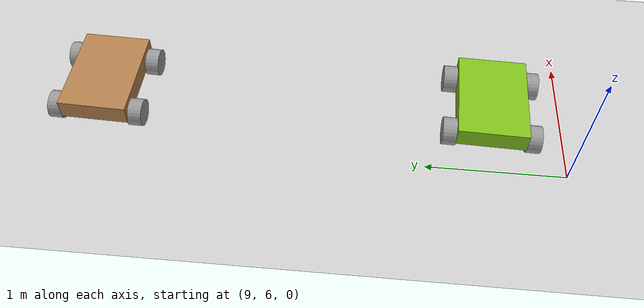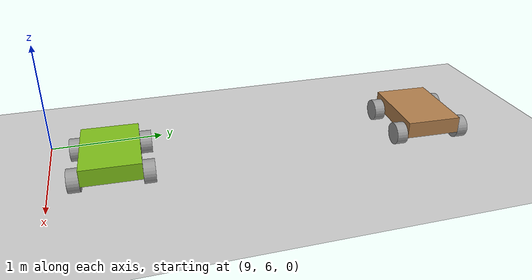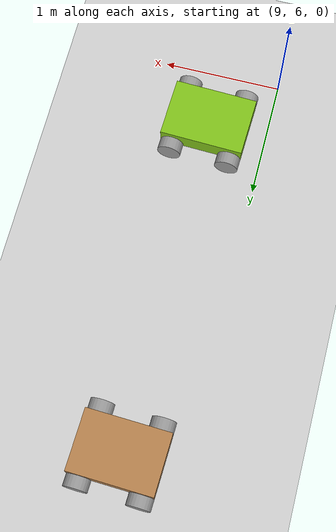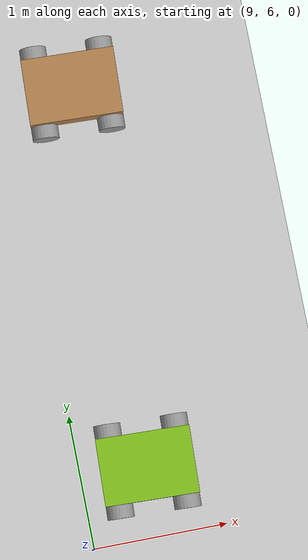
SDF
<sdf version="1.6">
 <world name="default">
  <model name="ground_plane">
   <static>1</static>
   <link name="link">
    <collision name="collision">
     <geometry><plane><normal>0 0 1</normal><size>100 100</size></plane></geometry>
     <surface>
      <contact><collide_bitmask>65535</collide_bitmask></contact>
      <friction><ode><mu>100</mu><mu2>50</mu2></ode></friction>
     </surface>
    </collision>
    <visual name="visual">
     <cast_shadows>0</cast_shadows>
     <geometry><plane><normal>0 0 1</normal><size>100 100</size></plane></geometry>
     <material>
      <script><uri>file://media/materials/scripts/gazebo.material</uri><name>Gazebo/Grey</name></script>
     </material>
    </visual>
   </link>
  </model>
  <model name="Marco-I">
   <link name="Chassis">
    <pose>-0 -0 0.0128 0 -0 0</pose>
    <inertial>
     <mass>1</mass>
     <inertia>
      <ixx>0.166667</ixx>
      <ixy>0</ixy>
      <ixz>0</ixz>
      <iyy>0.166667</iyy>
      <iyz>0</iyz>
      <izz>0.166667</izz>
     </inertia>
     <pose>0 0 0.2 0 -0 0</pose>
    </inertial>
    <visual name="Chassis_visual">
     <pose>0 0 0.2 0 -0 0</pose>
     <geometry><box><size>0.7 0.5 0.15</size></box></geometry>
     <material>
      <lighting>1</lighting>
      <script><uri>file://media/materials/scripts/gazebo.material</uri><name>Gazebo/Grey</name></script>
      <shader type="pixel"><normal_map>__default__</normal_map></shader>
      <ambient>0.5 0.75 0.1 1</ambient>
      <diffuse>0.7 0.7 0.7 1</diffuse>
      <specular>0.01 0.01 0.01 1</specular>
      <emissive>0 0 0 1</emissive>
     </material>
    </visual>
    <collision name="Chassis_collision">
     <pose>0 0 0.2 0 -0 0</pose>
     <geometry><box><size>0.7 0.5 0.15</size></box></geometry>
     <surface>
      <friction>
       <ode><mu>1</mu><mu2>1</mu2><fdir1>0 0 0</fdir1><slip1>0</slip1><slip2>0</slip2></ode>
       <torsional>
        <coefficient>1</coefficient>
        <patch_radius>0</patch_radius>
        <surface_radius>0</surface_radius>
        <use_patch_radius>1</use_patch_radius>
        <ode><slip>0</slip></ode>
       </torsional>
      </friction>
      <bounce><restitution_coefficient>0</restitution_coefficient><threshold>1e+06</threshold></bounce>
      <contact>
       <collide_without_contact>0</collide_without_contact>
       <collide_without_contact_bitmask>1</collide_without_contact_bitmask>
       <collide_bitmask>1</collide_bitmask>
       <ode>
        <soft_cfm>0</soft_cfm>
        <soft_erp>0.2</soft_erp>
        <kp>1e+13</kp>
        <kd>1</kd>
        <max_vel>0.01</max_vel>
        <min_depth>0</min_depth>
       </ode>
       <bullet>
        <split_impulse>1</split_impulse>
        <split_impulse_penetration_threshold>-0.01</split_impulse_penetration_threshold>
        <soft_cfm>0</soft_cfm>
        <soft_erp>0.2</soft_erp>
        <kp>1e+13</kp>
        <kd>1</kd>
       </bullet>
      </contact>
     </surface>
    </collision>
   </link>
   <link name="wheel_1">
    <pose>-0.25 0.30001 -0.0032 0 -0 0</pose>
    <inertial>
     <mass>1</mass>
     <inertia><ixx>0.145833</ixx><ixy>0</ixy><ixz>0</ixz><iyy>0.145833</iyy><iyz>0</iyz><izz>0.125</izz></inertia>
    </inertial>
    <visual name="wheel_1_visual">
     <pose>0 0 0.15 1.5707 -0 0</pose>
     <geometry><cylinder><radius>0.1</radius><length>0.1</length></cylinder></geometry>
     <material>
      <lighting>1</lighting>
      <script><uri>file://media/materials/scripts/gazebo.material</uri><name>Gazebo/Grey</name></script>
      <shader type="pixel"><normal_map>__default__</normal_map></shader>
      <ambient>0.3 0.3 0.3 1</ambient>
      <diffuse>0.7 0.7 0.7 1</diffuse>
      <specular>0.01 0.01 0.01 1</specular>
      <emissive>0 0 0 1</emissive>
     </material>
    </visual>
    <collision name="wheel_1_collision">
     <pose>0 0 0.15 1.5707 -0 0</pose>
     <geometry><cylinder><radius>0.1</radius><length>0.1</length></cylinder></geometry>
     <surface>
      <friction>
       <ode><mu>1</mu><mu2>1</mu2><fdir1>0 0 0</fdir1><slip1>0</slip1><slip2>0</slip2></ode>
       <torsional>
        <coefficient>1</coefficient>
        <patch_radius>0</patch_radius>
        <surface_radius>0</surface_radius>
        <use_patch_radius>1</use_patch_radius>
        <ode><slip>0</slip></ode>
       </torsional>
      </friction>
      <bounce><restitution_coefficient>0</restitution_coefficient><threshold>1e+06</threshold></bounce>
      <contact>
       <collide_without_contact>0</collide_without_contact>
       <collide_without_contact_bitmask>1</collide_without_contact_bitmask>
       <collide_bitmask>1</collide_bitmask>
       <ode>
        <soft_cfm>0</soft_cfm>
        <soft_erp>0.2</soft_erp>
        <kp>1e+13</kp>
        <kd>1</kd>
        <max_vel>0.01</max_vel>
        <min_depth>0</min_depth>
       </ode>
       <bullet>
        <split_impulse>1</split_impulse>
        <split_impulse_penetration_threshold>-0.01</split_impulse_penetration_threshold>
        <soft_cfm>0</soft_cfm>
        <soft_erp>0.2</soft_erp>
        <kp>1e+13</kp>
        <kd>1</kd>
       </bullet>
      </contact>
     </surface>
    </collision>
   </link>
   <link name="wheel_2">
    <pose>0.25 -0.30001 -0.0032 0 -0 0</pose>
    <inertial>
     <mass>1</mass>
     <inertia><ixx>0.145833</ixx><ixy>0</ixy><ixz>0</ixz><iyy>0.145833</iyy><iyz>0</iyz><izz>0.125</izz></inertia>
    </inertial>
    <visual name="wheel_2_visual">
     <pose>0 0 0.15 1.5707 -0 0</pose>
     <geometry><cylinder><radius>0.1</radius><length>0.1</length></cylinder></geometry>
     <material>
      <lighting>1</lighting>
      <script><uri>file://media/materials/scripts/gazebo.material</uri><name>Gazebo/Grey</name></script>
      <shader type="pixel"><normal_map>__default__</normal_map></shader>
      <ambient>0.3 0.3 0.3 1</ambient>
      <diffuse>0.7 0.7 0.7 1</diffuse>
      <specular>0.01 0.01 0.01 1</specular>
      <emissive>0 0 0 1</emissive>
     </material>
    </visual>
    <collision name="wheel_2_collision">
     <pose>0 0 0.15 1.5707 -0 0</pose>
     <geometry><cylinder><radius>0.1</radius><length>0.1</length></cylinder></geometry>
     <surface>
      <friction>
       <ode><mu>1</mu><mu2>1</mu2><fdir1>0 0 0</fdir1><slip1>0</slip1><slip2>0</slip2></ode>
       <torsional>
        <coefficient>1</coefficient>
        <patch_radius>0</patch_radius>
        <surface_radius>0</surface_radius>
        <use_patch_radius>1</use_patch_radius>
        <ode><slip>0</slip></ode>
       </torsional>
      </friction>
      <bounce><restitution_coefficient>0</restitution_coefficient><threshold>1e+06</threshold></bounce>
      <contact>
       <collide_without_contact>0</collide_without_contact>
       <collide_without_contact_bitmask>1</collide_without_contact_bitmask>
       <collide_bitmask>1</collide_bitmask>
       <ode>
        <soft_cfm>0</soft_cfm>
        <soft_erp>0.2</soft_erp>
        <kp>1e+13</kp>
        <kd>1</kd>
        <max_vel>0.01</max_vel>
        <min_depth>0</min_depth>
       </ode>
       <bullet>
        <split_impulse>1</split_impulse>
        <split_impulse_penetration_threshold>-0.01</split_impulse_penetration_threshold>
        <soft_cfm>0</soft_cfm>
        <soft_erp>0.2</soft_erp>
        <kp>1e+13</kp>
        <kd>1</kd>
       </bullet>
      </contact>
     </surface>
    </collision>
   </link>
   <link name="wheel_3">
    <pose>-0.25 -0.30001 -0.0032 0 -0 0</pose>
    <inertial>
     <mass>1</mass>
     <inertia><ixx>0.145833</ixx><ixy>0</ixy><ixz>0</ixz><iyy>0.145833</iyy><iyz>0</iyz><izz>0.125</izz></inertia>
    </inertial>
    <visual name="visual">
     <pose>0 0 0.15 1.5707 -0 0</pose>
     <geometry><cylinder><radius>0.1</radius><length>0.1</length></cylinder></geometry>
     <material>
      <lighting>1</lighting>
      <script><uri>file://media/materials/scripts/gazebo.material</uri><name>Gazebo/Grey</name></script>
      <shader type="pixel"><normal_map>__default__</normal_map></shader>
      <ambient>0.3 0.3 0.3 1</ambient>
      <diffuse>0.7 0.7 0.7 1</diffuse>
      <specular>0.01 0.01 0.01 1</specular>
      <emissive>0 0 0 1</emissive>
     </material>
    </visual>
    <collision name="collision">
     <pose>0 0 0.15 1.5707 -0 0</pose>
     <geometry><cylinder><radius>0.1</radius><length>0.1</length></cylinder></geometry>
     <surface>
      <friction>
       <ode><mu>1</mu><mu2>1</mu2><fdir1>0 0 0</fdir1><slip1>0</slip1><slip2>0</slip2></ode>
       <torsional>
        <coefficient>1</coefficient>
        <patch_radius>0</patch_radius>
        <surface_radius>0</surface_radius>
        <use_patch_radius>1</use_patch_radius>
        <ode><slip>0</slip></ode>
       </torsional>
      </friction>
      <bounce><restitution_coefficient>0</restitution_coefficient><threshold>1e+06</threshold></bounce>
      <contact>
       <collide_without_contact>0</collide_without_contact>
       <collide_without_contact_bitmask>1</collide_without_contact_bitmask>
       <collide_bitmask>1</collide_bitmask>
       <ode>
        <soft_cfm>0</soft_cfm>
        <soft_erp>0.2</soft_erp>
        <kp>1e+13</kp>
        <kd>1</kd>
        <max_vel>0.01</max_vel>
        <min_depth>0</min_depth>
       </ode>
       <bullet>
        <split_impulse>1</split_impulse>
        <split_impulse_penetration_threshold>-0.01</split_impulse_penetration_threshold>
        <soft_cfm>0</soft_cfm>
        <soft_erp>0.2</soft_erp>
        <kp>1e+13</kp>
        <kd>1</kd>
       </bullet>
      </contact>
     </surface>
    </collision>
   </link>
   <link name="wheel_4">
    <pose>0.25 0.30001 -0.0032 0 -0 0</pose>
    <inertial>
     <mass>1</mass>
     <inertia><ixx>0.145833</ixx><ixy>0</ixy><ixz>0</ixz><iyy>0.145833</iyy><iyz>0</iyz><izz>0.125</izz></inertia>
    </inertial>
    <visual name="visual">
     <pose>0 0 0.15 1.5707 -0 0</pose>
     <geometry><cylinder><radius>0.1</radius><length>0.1</length></cylinder></geometry>
     <material>
      <lighting>1</lighting>
      <script><uri>file://media/materials/scripts/gazebo.material</uri><name>Gazebo/Grey</name></script>
      <shader type="pixel"><normal_map>__default__</normal_map></shader>
      <ambient>0.3 0.3 0.3 1</ambient>
      <diffuse>0.7 0.7 0.7 1</diffuse>
      <specular>0.01 0.01 0.01 1</specular>
      <emissive>0 0 0 1</emissive>
     </material>
    </visual>
    <collision name="collision">
     <pose>0 0 0.15 1.5707 -0 0</pose>
     <geometry><cylinder><radius>0.1</radius><length>0.1</length></cylinder></geometry>
     <surface>
      <friction>
       <ode><mu>1</mu><mu2>1</mu2><fdir1>0 0 0</fdir1><slip1>0</slip1><slip2>0</slip2></ode>
       <torsional>
        <coefficient>1</coefficient>
        <patch_radius>0</patch_radius>
        <surface_radius>0</surface_radius>
        <use_patch_radius>1</use_patch_radius>
        <ode><slip>0</slip></ode>
       </torsional>
      </friction>
      <bounce><restitution_coefficient>0</restitution_coefficient><threshold>1e+06</threshold></bounce>
      <contact>
       <collide_without_contact>0</collide_without_contact>
       <collide_without_contact_bitmask>1</collide_without_contact_bitmask>
       <collide_bitmask>1</collide_bitmask>
       <ode>
        <soft_cfm>0</soft_cfm>
        <soft_erp>0.2</soft_erp>
        <kp>1e+13</kp>
        <kd>1</kd>
        <max_vel>0.01</max_vel>
        <min_depth>0</min_depth>
       </ode>
       <bullet>
        <split_impulse>1</split_impulse>
        <split_impulse_penetration_threshold>-0.01</split_impulse_penetration_threshold>
        <soft_cfm>0</soft_cfm>
        <soft_erp>0.2</soft_erp>
        <kp>1e+13</kp>
        <kd>1</kd>
       </bullet>
      </contact>
     </surface>
    </collision>
   </link>
   <joint name="Front_right_joint" type="revolute">
    <parent>Chassis</parent>
    <child>wheel_2</child>
    <axis>
     <xyz>0 -1 0</xyz>
     <use_parent_model_frame>0</use_parent_model_frame>
     <limit>
      <lower>-1.79769e+308</lower>
      <upper>1.79769e+308</upper>
      <effort>-1</effort>
      <velocity>-1</velocity>
     </limit>
     <dynamics>
      <spring_reference>0</spring_reference>
      <spring_stiffness>0</spring_stiffness>
      <damping>0</damping>
      <friction>0</friction>
     </dynamics>
    </axis>
    <physics>
     <ode><limit><cfm>0</cfm><erp>0.2</erp></limit><suspension><cfm>0</cfm><erp>0.2</erp></suspension></ode>
    </physics>
   </joint>
   <joint name="Left_front_joint" type="revolute">
    <parent>Chassis</parent>
    <child>wheel_4</child>
    <axis>
     <xyz>1 0 0</xyz>
     <use_parent_model_frame>0</use_parent_model_frame>
     <limit>
      <lower>-1.79769e+308</lower>
      <upper>1.79769e+308</upper>
      <effort>-1</effort>
      <velocity>-1</velocity>
     </limit>
     <dynamics>
      <spring_reference>0</spring_reference>
      <spring_stiffness>0</spring_stiffness>
      <damping>0</damping>
      <friction>0</friction>
     </dynamics>
    </axis>
    <physics>
     <ode><limit><cfm>0</cfm><erp>0.2</erp></limit><suspension><cfm>0</cfm><erp>0.2</erp></suspension></ode>
    </physics>
   </joint>
   <joint name="Left_rear_joint" type="revolute">
    <parent>Chassis</parent>
    <child>wheel_1</child>
    <axis>
     <xyz>0 1 0</xyz>
     <use_parent_model_frame>0</use_parent_model_frame>
     <limit>
      <lower>-1.79769e+308</lower>
      <upper>1.79769e+308</upper>
      <effort>-1</effort>
      <velocity>-1</velocity>
     </limit>
     <dynamics>
      <spring_reference>0</spring_reference>
      <spring_stiffness>0</spring_stiffness>
      <damping>0</damping>
      <friction>0</friction>
     </dynamics>
    </axis>
    <physics>
     <ode><limit><cfm>0</cfm><erp>0.2</erp></limit><suspension><cfm>0</cfm><erp>0.2</erp></suspension></ode>
    </physics>
   </joint>
   <joint name="Rear_right_joint" type="revolute">
    <parent>Chassis</parent>
    <child>wheel_3</child>
    <axis>
     <xyz>0 -1 0</xyz>
     <use_parent_model_frame>0</use_parent_model_frame>
     <limit>
      <lower>-1.79769e+308</lower>
      <upper>1.79769e+308</upper>
      <effort>-1</effort>
      <velocity>-1</velocity>
     </limit>
     <dynamics>
      <spring_reference>0</spring_reference>
      <spring_stiffness>0</spring_stiffness>
      <damping>0</damping>
      <friction>0</friction>
     </dynamics>
    </axis>
    <physics>
     <ode><limit><cfm>0</cfm><erp>0.2</erp></limit><suspension><cfm>0</cfm><erp>0.2</erp></suspension></ode>
    </physics>
   </joint>
   <static>0</static>
   <pose>9.50249 6.52548 -0.04679 -1.5e-05 1.7e-05 -0.035294</pose>
  </model>
  <model name="Polo-I">
   <link name="Chassis">
    <pose>-0 -0 0.0128 0 -0 0</pose>
    <inertial>
     <mass>1</mass>
     <inertia>
      <ixx>0.166667</ixx>
      <ixy>0</ixy>
      <ixz>0</ixz>
      <iyy>0.166667</iyy>
      <iyz>0</iyz>
      <izz>0.166667</izz>
     </inertia>
     <pose>0 0 0.2 0 -0 0</pose>
    </inertial>
    <visual name="Chassis_visual">
     <pose>0 0 0.2 0 -0 0</pose>
     <geometry><box><size>0.7 0.5 0.15</size></box></geometry>
     <material>
      <lighting>1</lighting>
      <script><uri>file://media/materials/scripts/gazebo.material</uri><name>Gazebo/Grey</name></script>
      <shader type="pixel"><normal_map>__default__</normal_map></shader>
      <ambient>0.7 0.5 0.3 1</ambient>
      <diffuse>0.7 0.7 0.7 1</diffuse>
      <specular>0.01 0.01 0.01 1</specular>
      <emissive>0 0 0 1</emissive>
     </material>
    </visual>
    <collision name="Chassis_collision">
     <pose>0 0 0.2 0 -0 0</pose>
     <geometry><box><size>0.7 0.5 0.15</size></box></geometry>
     <surface>
      <friction>
       <ode><mu>1</mu><mu2>1</mu2><fdir1>0 0 0</fdir1><slip1>0</slip1><slip2>0</slip2></ode>
       <torsional>
        <coefficient>1</coefficient>
        <patch_radius>0</patch_radius>
        <surface_radius>0</surface_radius>
        <use_patch_radius>1</use_patch_radius>
        <ode><slip>0</slip></ode>
       </torsional>
      </friction>
      <bounce><restitution_coefficient>0</restitution_coefficient><threshold>1e+06</threshold></bounce>
      <contact>
       <collide_without_contact>0</collide_without_contact>
       <collide_without_contact_bitmask>1</collide_without_contact_bitmask>
       <collide_bitmask>1</collide_bitmask>
       <ode>
        <soft_cfm>0</soft_cfm>
        <soft_erp>0.2</soft_erp>
        <kp>1e+13</kp>
        <kd>1</kd>
        <max_vel>0.01</max_vel>
        <min_depth>0</min_depth>
       </ode>
       <bullet>
        <split_impulse>1</split_impulse>
        <split_impulse_penetration_threshold>-0.01</split_impulse_penetration_threshold>
        <soft_cfm>0</soft_cfm>
        <soft_erp>0.2</soft_erp>
        <kp>1e+13</kp>
        <kd>1</kd>
       </bullet>
      </contact>
     </surface>
    </collision>
   </link>
   <link name="wheel_1">
    <pose>-0.25 0.30001 -0.0032 0 -0 0</pose>
    <inertial>
     <mass>1</mass>
     <inertia><ixx>0.145833</ixx><ixy>0</ixy><ixz>0</ixz><iyy>0.145833</iyy><iyz>0</iyz><izz>0.125</izz></inertia>
    </inertial>
    <visual name="wheel_1_visual">
     <pose>0 0 0.15 1.5707 -0 0</pose>
     <geometry><cylinder><radius>0.1</radius><length>0.1</length></cylinder></geometry>
     <material>
      <lighting>1</lighting>
      <script><uri>file://media/materials/scripts/gazebo.material</uri><name>Gazebo/Grey</name></script>
      <shader type="pixel"><normal_map>__default__</normal_map></shader>
      <ambient>0.3 0.3 0.3 1</ambient>
      <diffuse>0.7 0.7 0.7 1</diffuse>
      <specular>0.01 0.01 0.01 1</specular>
      <emissive>0 0 0 1</emissive>
     </material>
    </visual>
    <collision name="wheel_1_collision">
     <pose>0 0 0.15 1.5707 -0 0</pose>
     <geometry><cylinder><radius>0.1</radius><length>0.1</length></cylinder></geometry>
     <surface>
      <friction>
       <ode><mu>1</mu><mu2>1</mu2><fdir1>0 0 0</fdir1><slip1>0</slip1><slip2>0</slip2></ode>
       <torsional>
        <coefficient>1</coefficient>
        <patch_radius>0</patch_radius>
        <surface_radius>0</surface_radius>
        <use_patch_radius>1</use_patch_radius>
        <ode><slip>0</slip></ode>
       </torsional>
      </friction>
      <bounce><restitution_coefficient>0</restitution_coefficient><threshold>1e+06</threshold></bounce>
      <contact>
       <collide_without_contact>0</collide_without_contact>
       <collide_without_contact_bitmask>1</collide_without_contact_bitmask>
       <collide_bitmask>1</collide_bitmask>
       <ode>
        <soft_cfm>0</soft_cfm>
        <soft_erp>0.2</soft_erp>
        <kp>1e+13</kp>
        <kd>1</kd>
        <max_vel>0.01</max_vel>
        <min_depth>0</min_depth>
       </ode>
       <bullet>
        <split_impulse>1</split_impulse>
        <split_impulse_penetration_threshold>-0.01</split_impulse_penetration_threshold>
        <soft_cfm>0</soft_cfm>
        <soft_erp>0.2</soft_erp>
        <kp>1e+13</kp>
        <kd>1</kd>
       </bullet>
      </contact>
     </surface>
    </collision>
   </link>
   <link name="wheel_2">
    <pose>0.25 -0.30001 -0.0032 0 -0 0</pose>
    <inertial>
     <mass>1</mass>
     <inertia><ixx>0.145833</ixx><ixy>0</ixy><ixz>0</ixz><iyy>0.145833</iyy><iyz>0</iyz><izz>0.125</izz></inertia>
    </inertial>
    <visual name="wheel_2_visual">
     <pose>0 0 0.15 1.5707 -0 0</pose>
     <geometry><cylinder><radius>0.1</radius><length>0.1</length></cylinder></geometry>
     <material>
      <lighting>1</lighting>
      <script><uri>file://media/materials/scripts/gazebo.material</uri><name>Gazebo/Grey</name></script>
      <shader type="pixel"><normal_map>__default__</normal_map></shader>
      <ambient>0.3 0.3 0.3 1</ambient>
      <diffuse>0.7 0.7 0.7 1</diffuse>
      <specular>0.01 0.01 0.01 1</specular>
      <emissive>0 0 0 1</emissive>
     </material>
    </visual>
    <collision name="wheel_2_collision">
     <pose>0 0 0.15 1.5707 -0 0</pose>
     <geometry><cylinder><radius>0.1</radius><length>0.1</length></cylinder></geometry>
     <surface>
      <friction>
       <ode><mu>1</mu><mu2>1</mu2><fdir1>0 0 0</fdir1><slip1>0</slip1><slip2>0</slip2></ode>
       <torsional>
        <coefficient>1</coefficient>
        <patch_radius>0</patch_radius>
        <surface_radius>0</surface_radius>
        <use_patch_radius>1</use_patch_radius>
        <ode><slip>0</slip></ode>
       </torsional>
      </friction>
      <bounce><restitution_coefficient>0</restitution_coefficient><threshold>1e+06</threshold></bounce>
      <contact>
       <collide_without_contact>0</collide_without_contact>
       <collide_without_contact_bitmask>1</collide_without_contact_bitmask>
       <collide_bitmask>1</collide_bitmask>
       <ode>
        <soft_cfm>0</soft_cfm>
        <soft_erp>0.2</soft_erp>
        <kp>1e+13</kp>
        <kd>1</kd>
        <max_vel>0.01</max_vel>
        <min_depth>0</min_depth>
       </ode>
       <bullet>
        <split_impulse>1</split_impulse>
        <split_impulse_penetration_threshold>-0.01</split_impulse_penetration_threshold>
        <soft_cfm>0</soft_cfm>
        <soft_erp>0.2</soft_erp>
        <kp>1e+13</kp>
        <kd>1</kd>
       </bullet>
      </contact>
     </surface>
    </collision>
   </link>
   <link name="wheel_3">
    <pose>-0.25 -0.30001 -0.0032 0 -0 0</pose>
    <inertial>
     <mass>1</mass>
     <inertia><ixx>0.145833</ixx><ixy>0</ixy><ixz>0</ixz><iyy>0.145833</iyy><iyz>0</iyz><izz>0.125</izz></inertia>
    </inertial>
    <visual name="visual">
     <pose>0 0 0.15 1.5707 -0 0</pose>
     <geometry><cylinder><radius>0.1</radius><length>0.1</length></cylinder></geometry>
     <material>
      <lighting>1</lighting>
      <script><uri>file://media/materials/scripts/gazebo.material</uri><name>Gazebo/Grey</name></script>
      <shader type="pixel"><normal_map>__default__</normal_map></shader>
      <ambient>0.3 0.3 0.3 1</ambient>
      <diffuse>0.7 0.7 0.7 1</diffuse>
      <specular>0.01 0.01 0.01 1</specular>
      <emissive>0 0 0 1</emissive>
     </material>
    </visual>
    <collision name="collision">
     <pose>0 0 0.15 1.5707 -0 0</pose>
     <geometry><cylinder><radius>0.1</radius><length>0.1</length></cylinder></geometry>
     <surface>
      <friction>
       <ode><mu>1</mu><mu2>1</mu2><fdir1>0 0 0</fdir1><slip1>0</slip1><slip2>0</slip2></ode>
       <torsional>
        <coefficient>1</coefficient>
        <patch_radius>0</patch_radius>
        <surface_radius>0</surface_radius>
        <use_patch_radius>1</use_patch_radius>
        <ode><slip>0</slip></ode>
       </torsional>
      </friction>
      <bounce><restitution_coefficient>0</restitution_coefficient><threshold>1e+06</threshold></bounce>
      <contact>
       <collide_without_contact>0</collide_without_contact>
       <collide_without_contact_bitmask>1</collide_without_contact_bitmask>
       <collide_bitmask>1</collide_bitmask>
       <ode>
        <soft_cfm>0</soft_cfm>
        <soft_erp>0.2</soft_erp>
        <kp>1e+13</kp>
        <kd>1</kd>
        <max_vel>0.01</max_vel>
        <min_depth>0</min_depth>
       </ode>
       <bullet>
        <split_impulse>1</split_impulse>
        <split_impulse_penetration_threshold>-0.01</split_impulse_penetration_threshold>
        <soft_cfm>0</soft_cfm>
        <soft_erp>0.2</soft_erp>
        <kp>1e+13</kp>
        <kd>1</kd>
       </bullet>
      </contact>
     </surface>
    </collision>
   </link>
   <link name="wheel_4">
    <pose>0.25 0.30001 -0.0032 0 -0 0</pose>
    <inertial>
     <mass>1</mass>
     <inertia><ixx>0.145833</ixx><ixy>0</ixy><ixz>0</ixz><iyy>0.145833</iyy><iyz>0</iyz><izz>0.125</izz></inertia>
    </inertial>
    <visual name="visual">
     <pose>0 0 0.15 1.5707 -0 0</pose>
     <geometry><cylinder><radius>0.1</radius><length>0.1</length></cylinder></geometry>
     <material>
      <lighting>1</lighting>
      <script><uri>file://media/materials/scripts/gazebo.material</uri><name>Gazebo/Grey</name></script>
      <shader type="pixel"><normal_map>__default__</normal_map></shader>
      <ambient>0.3 0.3 0.3 1</ambient>
      <diffuse>0.7 0.7 0.7 1</diffuse>
      <specular>0.01 0.01 0.01 1</specular>
      <emissive>0 0 0 1</emissive>
     </material>
    </visual>
    <collision name="collision">
     <pose>0 0 0.15 1.5707 -0 0</pose>
     <geometry><cylinder><radius>0.1</radius><length>0.1</length></cylinder></geometry>
     <surface>
      <friction>
       <ode><mu>1</mu><mu2>1</mu2><fdir1>0 0 0</fdir1><slip1>0</slip1><slip2>0</slip2></ode>
       <torsional>
        <coefficient>1</coefficient>
        <patch_radius>0</patch_radius>
        <surface_radius>0</surface_radius>
        <use_patch_radius>1</use_patch_radius>
        <ode><slip>0</slip></ode>
       </torsional>
      </friction>
      <bounce><restitution_coefficient>0</restitution_coefficient><threshold>1e+06</threshold></bounce>
      <contact>
       <collide_without_contact>0</collide_without_contact>
       <collide_without_contact_bitmask>1</collide_without_contact_bitmask>
       <collide_bitmask>1</collide_bitmask>
       <ode>
        <soft_cfm>0</soft_cfm>
        <soft_erp>0.2</soft_erp>
        <kp>1e+13</kp>
        <kd>1</kd>
        <max_vel>0.01</max_vel>
        <min_depth>0</min_depth>
       </ode>
       <bullet>
        <split_impulse>1</split_impulse>
        <split_impulse_penetration_threshold>-0.01</split_impulse_penetration_threshold>
        <soft_cfm>0</soft_cfm>
        <soft_erp>0.2</soft_erp>
        <kp>1e+13</kp>
        <kd>1</kd>
       </bullet>
      </contact>
     </surface>
    </collision>
   </link>
   <joint name="Front_right_joint" type="revolute">
    <parent>Chassis</parent>
    <child>wheel_2</child>
    <axis>
     <xyz>0 -1 0</xyz>
     <use_parent_model_frame>0</use_parent_model_frame>
     <limit>
      <lower>-1.79769e+308</lower>
      <upper>1.79769e+308</upper>
      <effort>-1</effort>
      <velocity>-1</velocity>
     </limit>
     <dynamics>
      <spring_reference>0</spring_reference>
      <spring_stiffness>0</spring_stiffness>
      <damping>0</damping>
      <friction>0</friction>
     </dynamics>
    </axis>
    <physics>
     <ode><limit><cfm>0</cfm><erp>0.2</erp></limit><suspension><cfm>0</cfm><erp>0.2</erp></suspension></ode>
    </physics>
   </joint>
   <joint name="Left_front_joint" type="revolute">
    <parent>Chassis</parent>
    <child>wheel_4</child>
    <axis>
     <xyz>1 0 0</xyz>
     <use_parent_model_frame>0</use_parent_model_frame>
     <limit>
      <lower>-1.79769e+308</lower>
      <upper>1.79769e+308</upper>
      <effort>-1</effort>
      <velocity>-1</velocity>
     </limit>
     <dynamics>
      <spring_reference>0</spring_reference>
      <spring_stiffness>0</spring_stiffness>
      <damping>0</damping>
      <friction>0</friction>
     </dynamics>
    </axis>
    <physics>
     <ode><limit><cfm>0</cfm><erp>0.2</erp></limit><suspension><cfm>0</cfm><erp>0.2</erp></suspension></ode>
    </physics>
   </joint>
   <joint name="Left_rear_joint" type="revolute">
    <parent>Chassis</parent>
    <child>wheel_1</child>
    <axis>
     <xyz>0 1 0</xyz>
     <use_parent_model_frame>0</use_parent_model_frame>
     <limit>
      <lower>-1.79769e+308</lower>
      <upper>1.79769e+308</upper>
      <effort>-1</effort>
      <velocity>-1</velocity>
     </limit>
     <dynamics>
      <spring_reference>0</spring_reference>
      <spring_stiffness>0</spring_stiffness>
      <damping>0</damping>
      <friction>0</friction>
     </dynamics>
    </axis>
    <physics>
     <ode><limit><cfm>0</cfm><erp>0.2</erp></limit><suspension><cfm>0</cfm><erp>0.2</erp></suspension></ode>
    </physics>
   </joint>
   <joint name="Rear_right_joint" type="revolute">
    <parent>Chassis</parent>
    <child>wheel_3</child>
    <axis>
     <xyz>0 -1 0</xyz>
     <use_parent_model_frame>0</use_parent_model_frame>
     <limit>
      <lower>-1.79769e+308</lower>
      <upper>1.79769e+308</upper>
      <effort>-1</effort>
      <velocity>-1</velocity>
     </limit>
     <dynamics>
      <spring_reference>0</spring_reference>
      <spring_stiffness>0</spring_stiffness>
      <damping>0</damping>
      <friction>0</friction>
     </dynamics>
    </axis>
    <physics>
     <ode><limit><cfm>0</cfm><erp>0.2</erp></limit><suspension><cfm>0</cfm><erp>0.2</erp></suspension></ode>
    </physics>
   </joint>
   <static>0</static>
   <pose>9.49348 9.40645 -0.046794 -9e-06 9e-06 -0.038164</pose>
  </model>
 </world>
</sdf>
